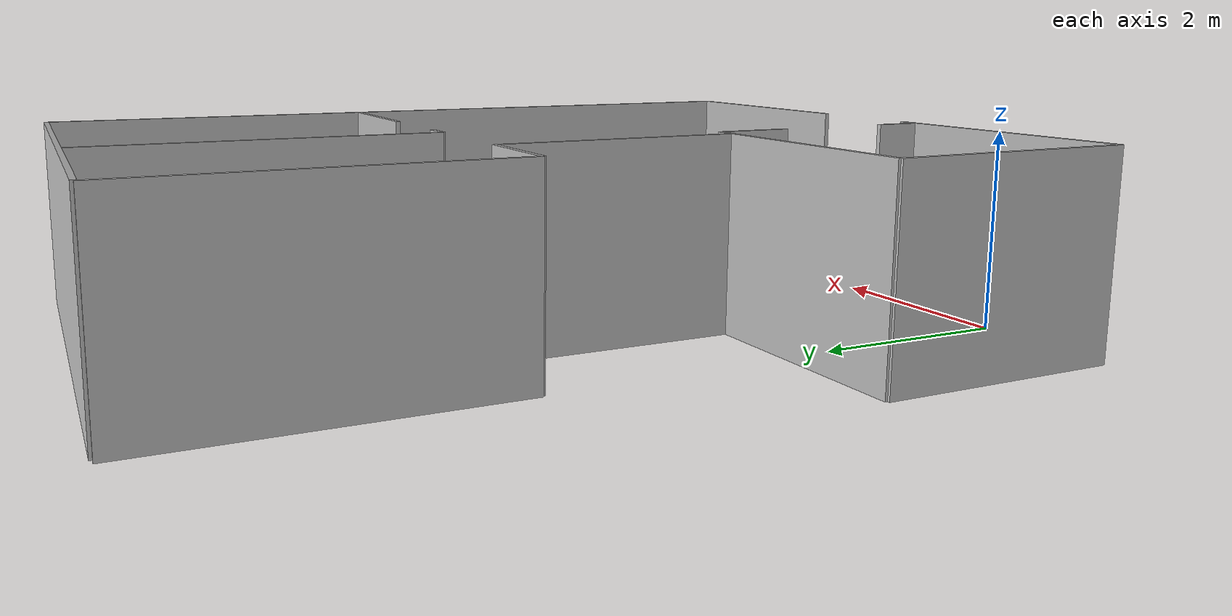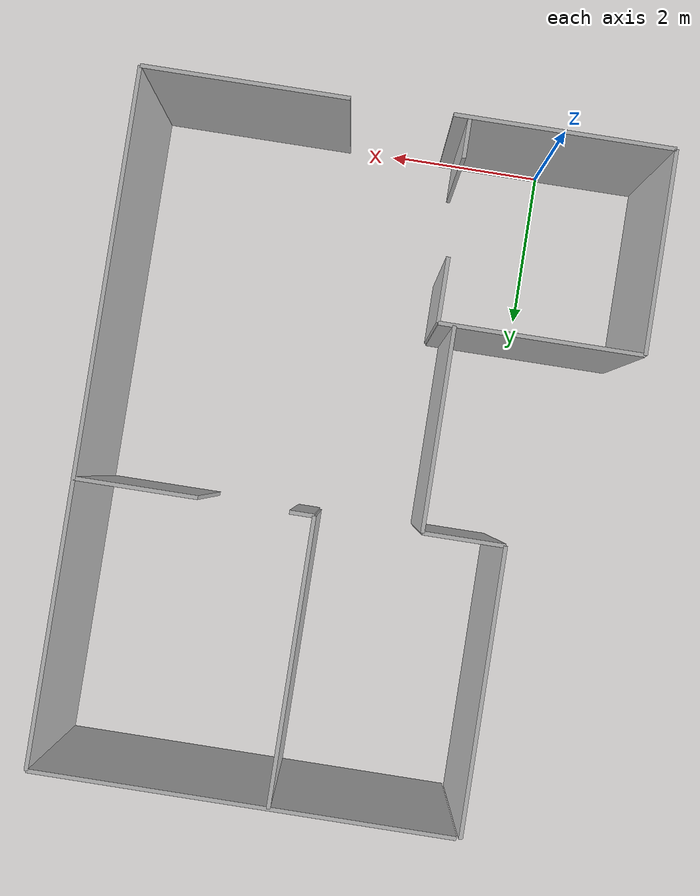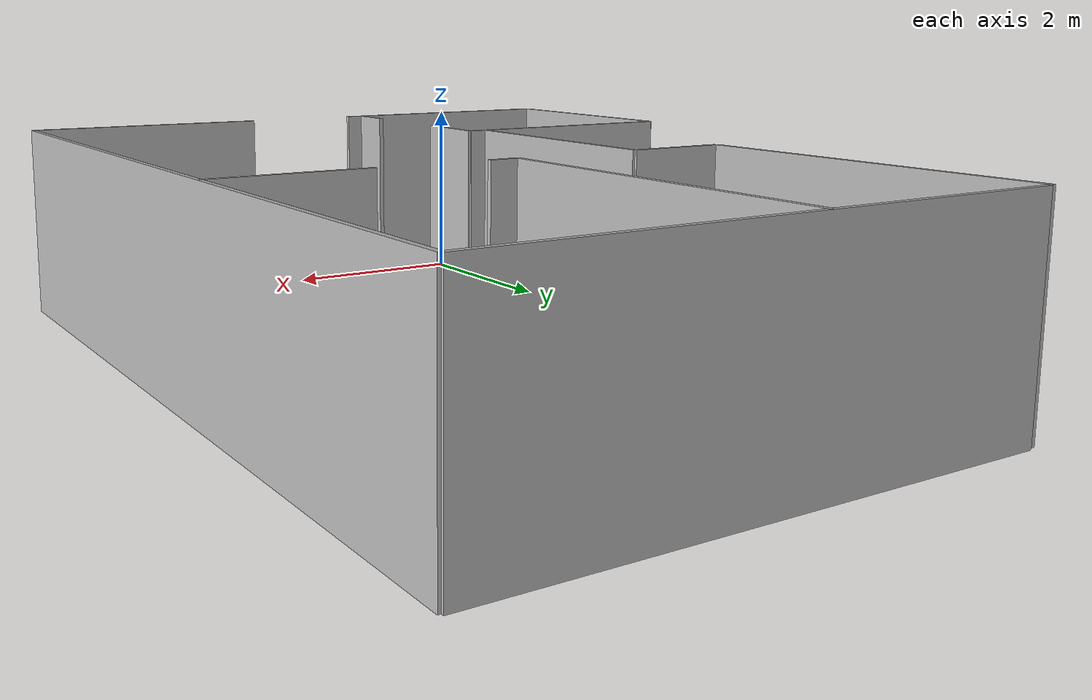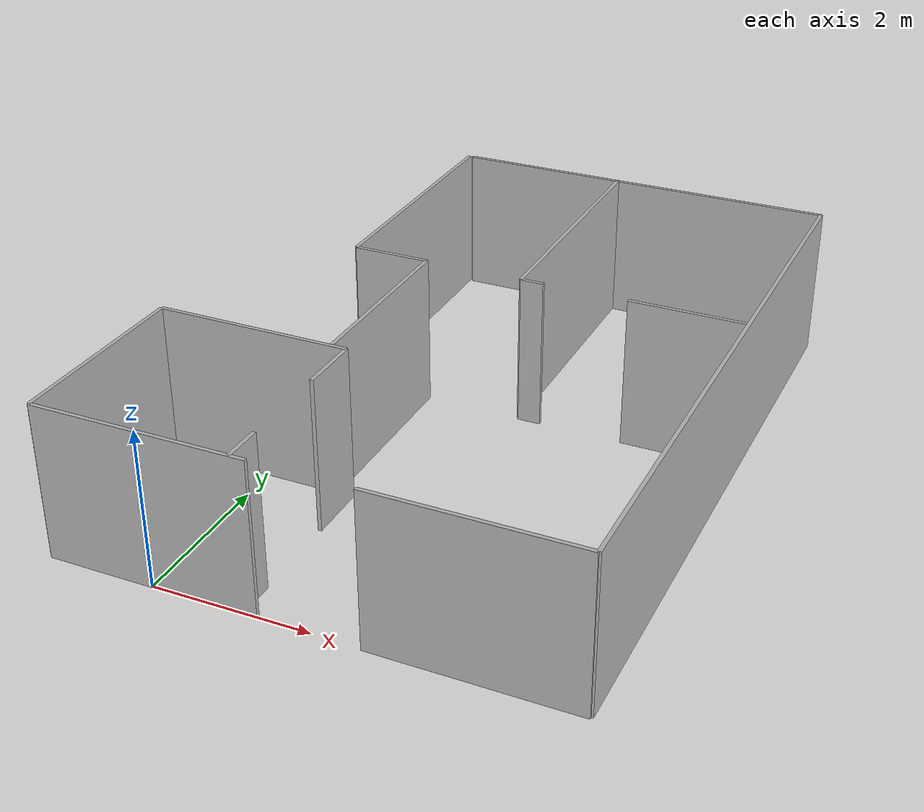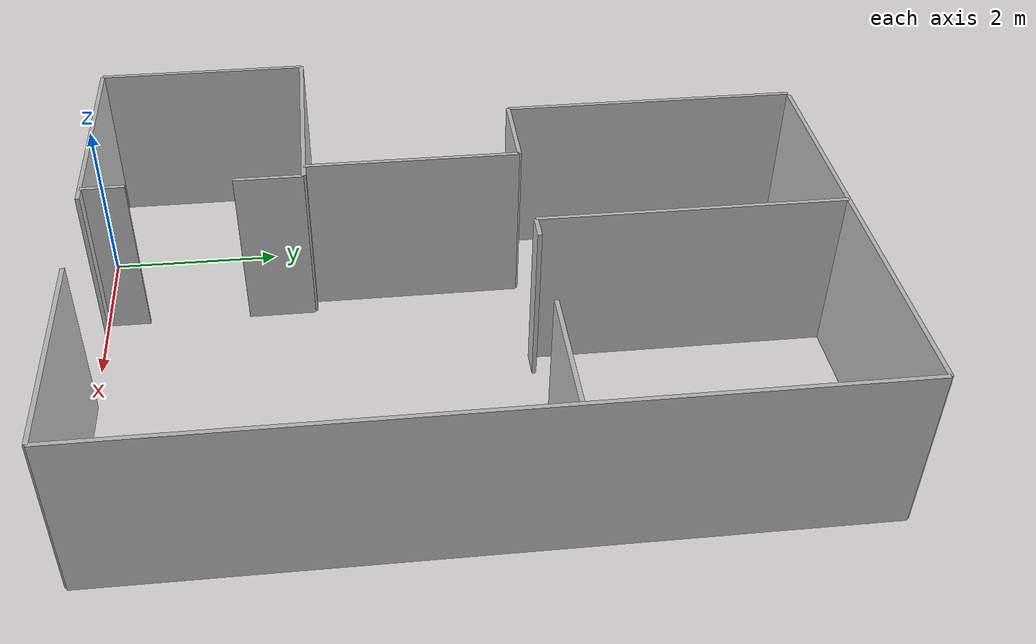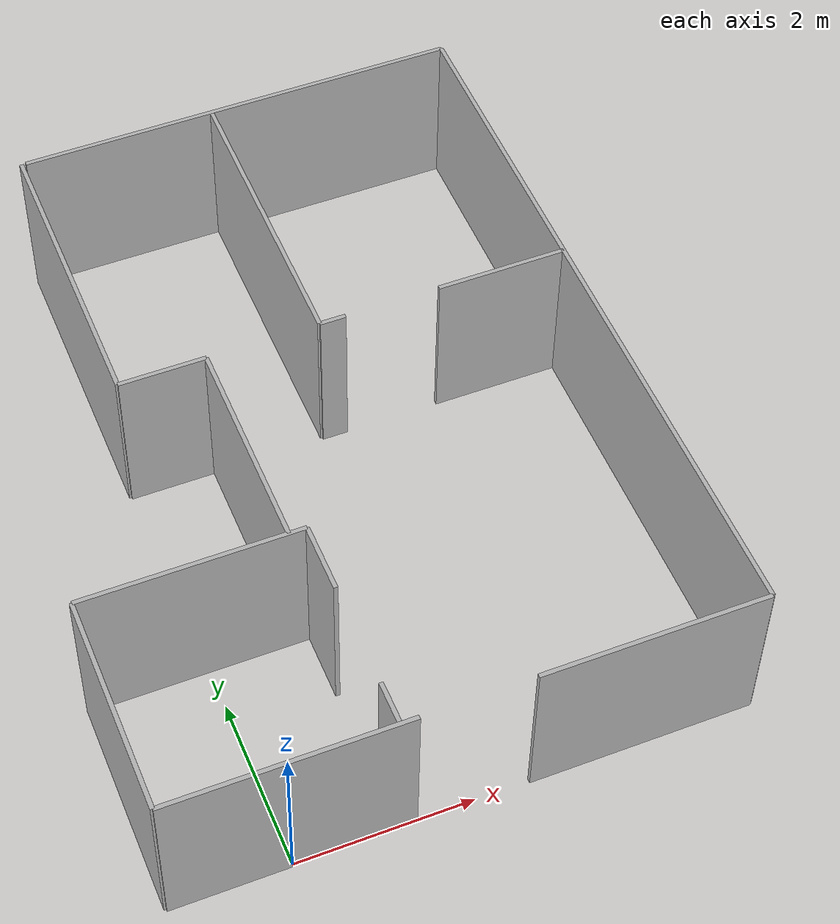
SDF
<?xml version='1.0'?>
<sdf version="1.4">
<model name="hri_one_bedroom">
  <pose>0 0 0 0 0 0</pose>
  <static>true</static>

    <link name="wall1">
      <pose>0 0 1 0 0 0</pose>
      <inertial>
        <mass>1000.0</mass>
        <inertia> <!-- interias are tricky to compute -->
          <!-- http://answers.gazebosim.org/question/4372/the-inertia-matrix-explained/ -->
          <ixx>0.083</ixx>       <!-- for a box: ixx = 0.083 * mass * (y*y + z*z) -->
          <ixy>0.0</ixy>         <!-- for a box: ixy = 0 -->
          <ixz>0.0</ixz>         <!-- for a box: ixz = 0 -->
          <iyy>0.083</iyy>       <!-- for a box: iyy = 0.083 * mass * (x*x + z*z) -->
          <iyz>0.0</iyz>         <!-- for a box: iyz = 0 -->
          <izz>0.083</izz>       <!-- for a box: izz = 0.083 * mass * (x*x + y*y) -->
        </inertia>
      </inertial>
      <collision name="collision">
        <geometry>
          <box>
            <size>2.7    0.0500    2.0000</size>
          </box>
        </geometry>
      </collision>
      <visual name="visual">
        <geometry>
          <box>
            <size>2.7    0.0500    2.0000</size>
          </box>
        </geometry>
      </visual>
    </link>

    <link name="wall2">
      <pose>-1.35 1.25 1 0 0 0</pose>
      <inertial>
        <mass>1000.0</mass>
        <inertia> <!-- interias are tricky to compute -->
          <!-- http://answers.gazebosim.org/question/4372/the-inertia-matrix-explained/ -->
          <ixx>0.083</ixx>       <!-- for a box: ixx = 0.083 * mass * (y*y + z*z) -->
          <ixy>0.0</ixy>         <!-- for a box: ixy = 0 -->
          <ixz>0.0</ixz>         <!-- for a box: ixz = 0 -->
          <iyy>0.083</iyy>       <!-- for a box: iyy = 0.083 * mass * (x*x + z*z) -->
          <iyz>0.0</iyz>         <!-- for a box: iyz = 0 -->
          <izz>0.083</izz>       <!-- for a box: izz = 0.083 * mass * (x*x + y*y) -->
        </inertia>
      </inertial>
      <collision name="collision">
        <geometry>
          <box>
            <size>0.0500    2.5    2.0000</size>
          </box>
        </geometry>
      </collision>
      <visual name="visual">
        <geometry>
          <box>
            <size>0.0500    2.5    2.0000</size>
          </box>
        </geometry>
      </visual>
    </link>

    <link name="wall3">
      <pose>-0.1 2.5 1 0 0 0</pose>
      <inertial>
        <mass>1000.0</mass>
        <inertia> <!-- interias are tricky to compute -->
          <!-- http://answers.gazebosim.org/question/4372/the-inertia-matrix-explained/ -->
          <ixx>0.083</ixx>       <!-- for a box: ixx = 0.083 * mass * (y*y + z*z) -->
          <ixy>0.0</ixy>         <!-- for a box: ixy = 0 -->
          <ixz>0.0</ixz>         <!-- for a box: ixz = 0 -->
          <iyy>0.083</iyy>       <!-- for a box: iyy = 0.083 * mass * (x*x + z*z) -->
          <iyz>0.0</iyz>         <!-- for a box: iyz = 0 -->
          <izz>0.083</izz>       <!-- for a box: izz = 0.083 * mass * (x*x + y*y) -->
        </inertia>
      </inertial>
      <collision name="collision">
        <geometry>
          <box>
            <size>2.5    0.0500    2.0000</size>
          </box>
        </geometry>
      </collision>
      <visual name="visual">
        <geometry>
          <box>
            <size>2.5    0.0500    2.0000</size>
          </box>
        </geometry>
      </visual>
    </link>

    <link name="wall4">
      <pose>1.15 0.25 1 0 0 0</pose>
      <inertial>
        <mass>1000.0</mass>
        <inertia> <!-- interias are tricky to compute -->
          <!-- http://answers.gazebosim.org/question/4372/the-inertia-matrix-explained/ -->
          <ixx>0.083</ixx>       <!-- for a box: ixx = 0.083 * mass * (y*y + z*z) -->
          <ixy>0.0</ixy>         <!-- for a box: ixy = 0 -->
          <ixz>0.0</ixz>         <!-- for a box: ixz = 0 -->
          <iyy>0.083</iyy>       <!-- for a box: iyy = 0.083 * mass * (x*x + z*z) -->
          <iyz>0.0</iyz>         <!-- for a box: iyz = 0 -->
          <izz>0.083</izz>       <!-- for a box: izz = 0.083 * mass * (x*x + y*y) -->
        </inertia>
      </inertial>
      <collision name="collision">
        <geometry>
          <box>
            <size>0.0500    0.5    2.0000</size>
          </box>
        </geometry>
      </collision>
      <visual name="visual">
        <geometry>
          <box>
            <size>0.0500    0.5    2.0000</size>
          </box>
        </geometry>
      </visual>
    </link>

    <link name="wall5">
      <pose>1.15 2.1 1 0 0 0</pose>
      <inertial>
        <mass>1000.0</mass>
        <inertia> <!-- interias are tricky to compute -->
          <!-- http://answers.gazebosim.org/question/4372/the-inertia-matrix-explained/ -->
          <ixx>0.083</ixx>       <!-- for a box: ixx = 0.083 * mass * (y*y + z*z) -->
          <ixy>0.0</ixy>         <!-- for a box: ixy = 0 -->
          <ixz>0.0</ixz>         <!-- for a box: ixz = 0 -->
          <iyy>0.083</iyy>       <!-- for a box: iyy = 0.083 * mass * (x*x + z*z) -->
          <iyz>0.0</iyz>         <!-- for a box: iyz = 0 -->
          <izz>0.083</izz>       <!-- for a box: izz = 0.083 * mass * (x*x + y*y) -->
        </inertia>
      </inertial>
      <collision name="collision">
        <geometry>
          <box>
            <size>0.0500    0.8    2.0000</size>
          </box>
        </geometry>
      </collision>
      <visual name="visual">
        <geometry>
          <box>
            <size>0.0500    0.8    2.0000</size>
          </box>
        </geometry>
      </visual>
    </link>

    <link name="wall6">
      <pose>0.95 3.75 1 0 0 0</pose>
      <inertial>
        <mass>1000.0</mass>
        <inertia> <!-- interias are tricky to compute -->
          <!-- http://answers.gazebosim.org/question/4372/the-inertia-matrix-explained/ -->
          <ixx>0.083</ixx>       <!-- for a box: ixx = 0.083 * mass * (y*y + z*z) -->
          <ixy>0.0</ixy>         <!-- for a box: ixy = 0 -->
          <ixz>0.0</ixz>         <!-- for a box: ixz = 0 -->
          <iyy>0.083</iyy>       <!-- for a box: iyy = 0.083 * mass * (x*x + z*z) -->
          <iyz>0.0</iyz>         <!-- for a box: iyz = 0 -->
          <izz>0.083</izz>       <!-- for a box: izz = 0.083 * mass * (x*x + y*y) -->
        </inertia>
      </inertial>
      <collision name="collision">
        <geometry>
          <box>
            <size>0.0500    2.5    2.0000</size>
          </box>
        </geometry>
      </collision>
      <visual name="visual">
        <geometry>
          <box>
            <size>0.0500    2.5    2.0000</size>
          </box>
        </geometry>
      </visual>
    </link>

    <link name="wall7">
      <pose>0.45 5 1 0 0 0</pose>
      <inertial>
        <mass>1000.0</mass>
        <inertia> <!-- interias are tricky to compute -->
          <!-- http://answers.gazebosim.org/question/4372/the-inertia-matrix-explained/ -->
          <ixx>0.083</ixx>       <!-- for a box: ixx = 0.083 * mass * (y*y + z*z) -->
          <ixy>0.0</ixy>         <!-- for a box: ixy = 0 -->
          <ixz>0.0</ixz>         <!-- for a box: ixz = 0 -->
          <iyy>0.083</iyy>       <!-- for a box: iyy = 0.083 * mass * (x*x + z*z) -->
          <iyz>0.0</iyz>         <!-- for a box: iyz = 0 -->
          <izz>0.083</izz>       <!-- for a box: izz = 0.083 * mass * (x*x + y*y) -->
        </inertia>
      </inertial>
      <collision name="collision">
        <geometry>
          <box>
            <size>1.0    0.0500    2.0000</size>
          </box>
        </geometry>
      </collision>
      <visual name="visual">
        <geometry>
          <box>
            <size>1.0    0.0500    2.0000</size>
          </box>
        </geometry>
      </visual>
    </link>

    <link name="wall8">
      <pose>-0.05 6.75 1 0 0 0</pose>
      <inertial>
        <mass>1000.0</mass>
        <inertia> <!-- interias are tricky to compute -->
          <!-- http://answers.gazebosim.org/question/4372/the-inertia-matrix-explained/ -->
          <ixx>0.083</ixx>       <!-- for a box: ixx = 0.083 * mass * (y*y + z*z) -->
          <ixy>0.0</ixy>         <!-- for a box: ixy = 0 -->
          <ixz>0.0</ixz>         <!-- for a box: ixz = 0 -->
          <iyy>0.083</iyy>       <!-- for a box: iyy = 0.083 * mass * (x*x + z*z) -->
          <iyz>0.0</iyz>         <!-- for a box: iyz = 0 -->
          <izz>0.083</izz>       <!-- for a box: izz = 0.083 * mass * (x*x + y*y) -->
        </inertia>
      </inertial>
      <collision name="collision">
        <geometry>
          <box>
            <size>0.0500    3.5    2.0000</size>
          </box>
        </geometry>
      </collision>
      <visual name="visual">
        <geometry>
          <box>
            <size>0.0500    3.5    2.0000</size>
          </box>
        </geometry>
      </visual>
    </link>

    <link name="wall9">
      <pose>2.575 8.5 1 0 0 0</pose>
      <inertial>
        <mass>1000.0</mass>
        <inertia> <!-- interias are tricky to compute -->
          <!-- http://answers.gazebosim.org/question/4372/the-inertia-matrix-explained/ -->
          <ixx>0.083</ixx>       <!-- for a box: ixx = 0.083 * mass * (y*y + z*z) -->
          <ixy>0.0</ixy>         <!-- for a box: ixy = 0 -->
          <ixz>0.0</ixz>         <!-- for a box: ixz = 0 -->
          <iyy>0.083</iyy>       <!-- for a box: iyy = 0.083 * mass * (x*x + z*z) -->
          <iyz>0.0</iyz>         <!-- for a box: iyz = 0 -->
          <izz>0.083</izz>       <!-- for a box: izz = 0.083 * mass * (x*x + y*y) -->
        </inertia>
      </inertial>
      <collision name="collision">
        <geometry>
          <box>
            <size>5.15    0.0500    2.0000</size>
          </box>
        </geometry>
      </collision>
      <visual name="visual">
        <geometry>
          <box>
            <size>5.15    0.0500    2.0000</size>
          </box>
        </geometry>
      </visual>
    </link>

    <link name="wall10">
      <pose>5.15 4.25 1 0 0 0</pose>
      <inertial>
        <mass>1000.0</mass>
        <inertia> <!-- interias are tricky to compute -->
          <!-- http://answers.gazebosim.org/question/4372/the-inertia-matrix-explained/ -->
          <ixx>0.083</ixx>       <!-- for a box: ixx = 0.083 * mass * (y*y + z*z) -->
          <ixy>0.0</ixy>         <!-- for a box: ixy = 0 -->
          <ixz>0.0</ixz>         <!-- for a box: ixz = 0 -->
          <iyy>0.083</iyy>       <!-- for a box: iyy = 0.083 * mass * (x*x + z*z) -->
          <iyz>0.0</iyz>         <!-- for a box: iyz = 0 -->
          <izz>0.083</izz>       <!-- for a box: izz = 0.083 * mass * (x*x + y*y) -->
        </inertia>
      </inertial>
      <collision name="collision">
        <geometry>
          <box>
            <size>0.0500    8.5    2.0000</size>
          </box>
        </geometry>
      </collision>
      <visual name="visual">
        <geometry>
          <box>
            <size>0.0500    8.5    2.0000</size>
          </box>
        </geometry>
      </visual>
    </link>

    <link name="wall11">
      <pose>3.875 0 1 0 0 0</pose>
      <inertial>
        <mass>1000.0</mass>
        <inertia> <!-- interias are tricky to compute -->
          <!-- http://answers.gazebosim.org/question/4372/the-inertia-matrix-explained/ -->
          <ixx>0.083</ixx>       <!-- for a box: ixx = 0.083 * mass * (y*y + z*z) -->
          <ixy>0.0</ixy>         <!-- for a box: ixy = 0 -->
          <ixz>0.0</ixz>         <!-- for a box: ixz = 0 -->
          <iyy>0.083</iyy>       <!-- for a box: iyy = 0.083 * mass * (x*x + z*z) -->
          <iyz>0.0</iyz>         <!-- for a box: iyz = 0 -->
          <izz>0.083</izz>       <!-- for a box: izz = 0.083 * mass * (x*x + y*y) -->
        </inertia>
      </inertial>
      <collision name="collision">
        <geometry>
          <box>
            <size>2.55    0.0500    2.0000</size>
          </box>
        </geometry>
      </collision>
      <visual name="visual">
        <geometry>
          <box>
            <size>2.55    0.0500    2.0000</size>
          </box>
        </geometry>
      </visual>
    </link>

    <link name="wall12">
      <pose>4.4 5 1 0 0 0</pose>
      <inertial>
        <mass>1000.0</mass>
        <inertia> <!-- interias are tricky to compute -->
          <!-- http://answers.gazebosim.org/question/4372/the-inertia-matrix-explained/ -->
          <ixx>0.083</ixx>       <!-- for a box: ixx = 0.083 * mass * (y*y + z*z) -->
          <ixy>0.0</ixy>         <!-- for a box: ixy = 0 -->
          <ixz>0.0</ixz>         <!-- for a box: ixz = 0 -->
          <iyy>0.083</iyy>       <!-- for a box: iyy = 0.083 * mass * (x*x + z*z) -->
          <iyz>0.0</iyz>         <!-- for a box: iyz = 0 -->
          <izz>0.083</izz>       <!-- for a box: izz = 0.083 * mass * (x*x + y*y) -->
        </inertia>
      </inertial>
      <collision name="collision">
        <geometry>
          <box>
            <size>1.5    0.0500    2.0000</size>
          </box>
        </geometry>
      </collision>
      <visual name="visual">
        <geometry>
          <box>
            <size>1.5    0.0500    2.0000</size>
          </box>
        </geometry>
      </visual>
    </link>

    <link name="wall13">
      <pose>2.4 5 1 0 0 0</pose>
      <inertial>
        <mass>1000.0</mass>
        <inertia> <!-- interias are tricky to compute -->
          <!-- http://answers.gazebosim.org/question/4372/the-inertia-matrix-explained/ -->
          <ixx>0.083</ixx>       <!-- for a box: ixx = 0.083 * mass * (y*y + z*z) -->
          <ixy>0.0</ixy>         <!-- for a box: ixy = 0 -->
          <ixz>0.0</ixz>         <!-- for a box: ixz = 0 -->
          <iyy>0.083</iyy>       <!-- for a box: iyy = 0.083 * mass * (x*x + z*z) -->
          <iyz>0.0</iyz>         <!-- for a box: iyz = 0 -->
          <izz>0.083</izz>       <!-- for a box: izz = 0.083 * mass * (x*x + y*y) -->
        </inertia>
      </inertial>
      <collision name="collision">
        <geometry>
          <box>
            <size>0.3    0.0500    2.0000</size>
          </box>
        </geometry>
      </collision>
      <visual name="visual">
        <geometry>
          <box>
            <size>0.3    0.0500    2.0000</size>
          </box>
        </geometry>
      </visual>
    </link>

    <link name="wall14">
      <pose>2.25 6.75 1 0 0 0</pose>
      <inertial>
        <mass>1000.0</mass>
        <inertia> <!-- interias are tricky to compute -->
          <!-- http://answers.gazebosim.org/question/4372/the-inertia-matrix-explained/ -->
          <ixx>0.083</ixx>       <!-- for a box: ixx = 0.083 * mass * (y*y + z*z) -->
          <ixy>0.0</ixy>         <!-- for a box: ixy = 0 -->
          <ixz>0.0</ixz>         <!-- for a box: ixz = 0 -->
          <iyy>0.083</iyy>       <!-- for a box: iyy = 0.083 * mass * (x*x + z*z) -->
          <iyz>0.0</iyz>         <!-- for a box: iyz = 0 -->
          <izz>0.083</izz>       <!-- for a box: izz = 0.083 * mass * (x*x + y*y) -->
        </inertia>
      </inertial>
      <collision name="collision">
        <geometry>
          <box>
            <size>0.0500    3.5    2.0000</size>
          </box>
        </geometry>
      </collision>
      <visual name="visual">
        <geometry>
          <box>
            <size>0.0500    3.5    2.0000</size>
          </box>
        </geometry>
      </visual>
    </link>

  </model>
</sdf>
